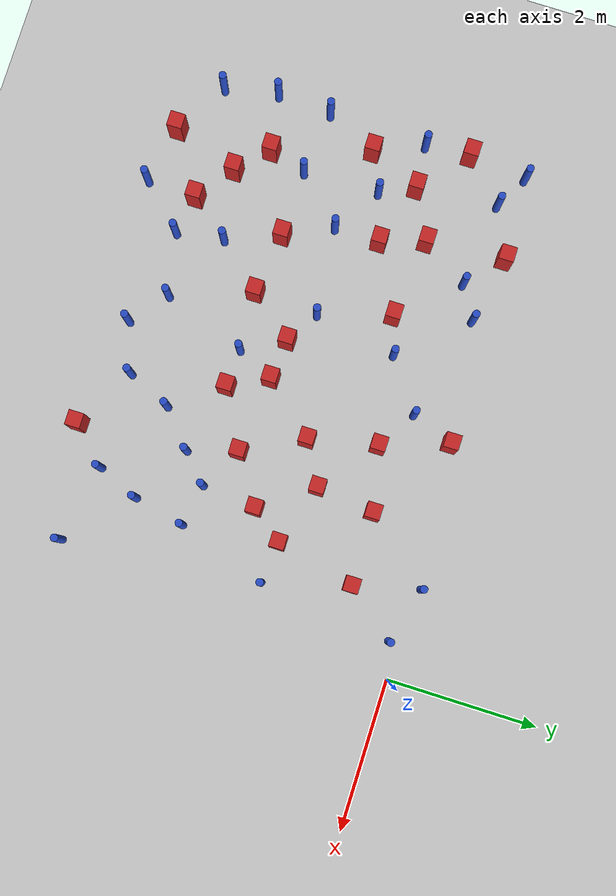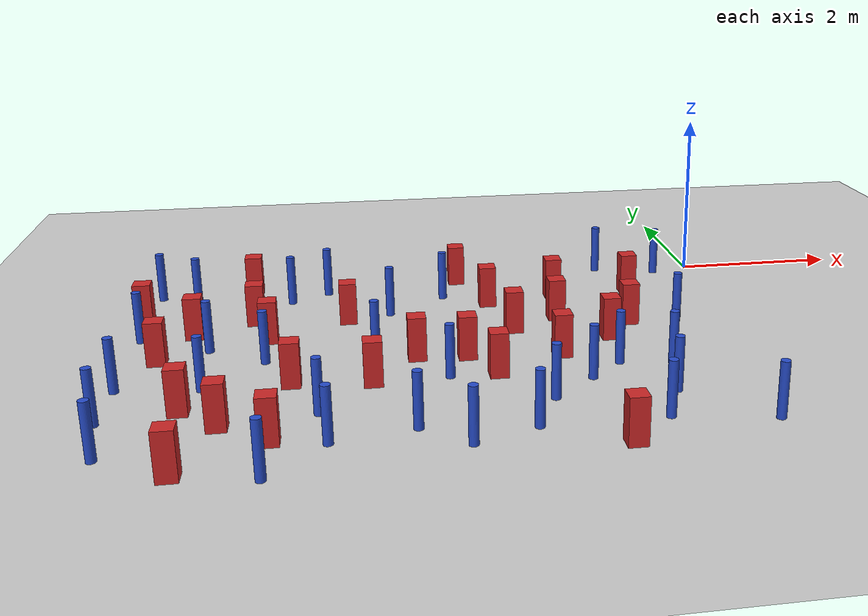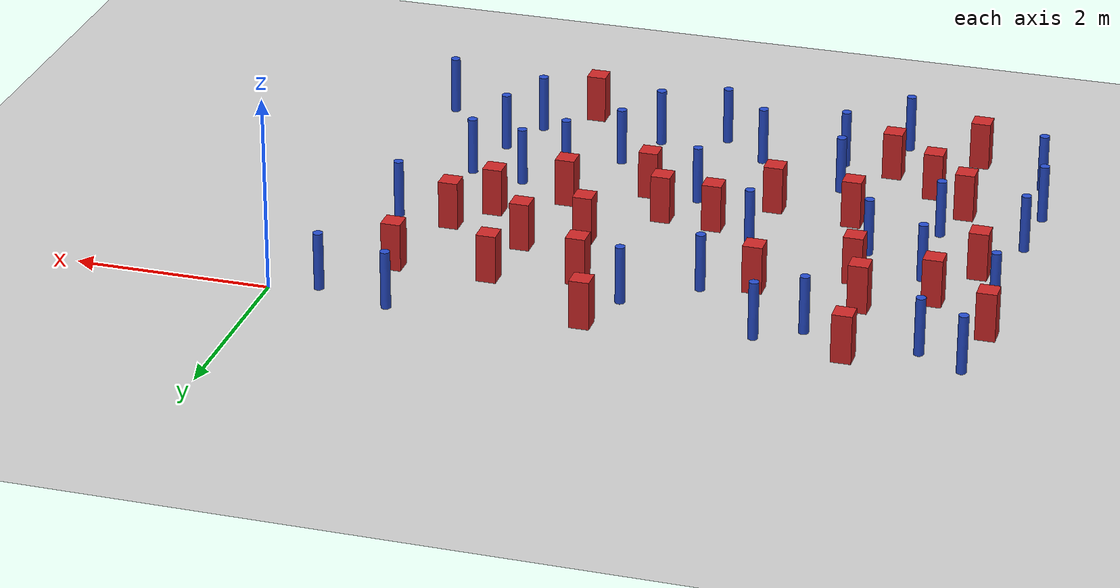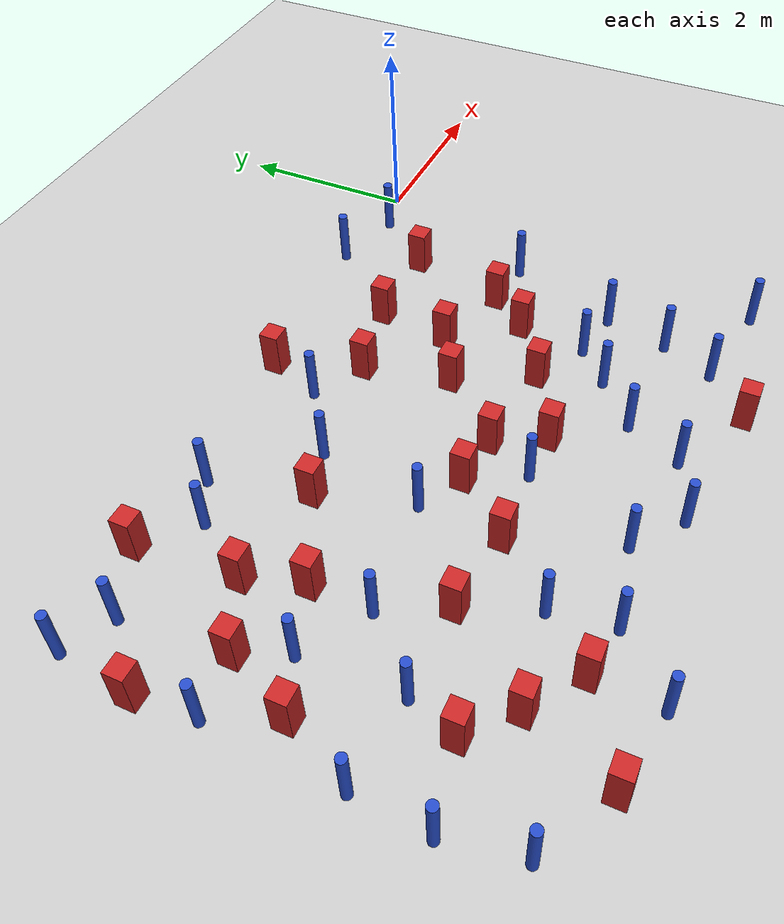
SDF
<sdf version="1.6">
 <world name="default">
  <model name="ground_plane">
   <static>1</static>
   <link name="link">
    <collision name="collision">
     <geometry><plane><normal>0 0 1</normal><size>100 100</size></plane></geometry>
     <surface><friction><ode><mu>100</mu><mu2>50</mu2></ode></friction></surface>
    </collision>
    <visual name="visual">
     <cast_shadows>0</cast_shadows>
     <geometry><plane><normal>0 0 1</normal><size>100 100</size></plane></geometry>
     <material>
      <ambient>1.0 1.0 1.0 1.0</ambient>
      <diffuse>0.8 0.8 0.8 1.0</diffuse>
      <specular>0.01 0.01 0.01 1.000000</specular>
     </material>
    </visual>
   </link>
  </model>
  <model name="pole_obstacle6">
   <static>true</static>
   <pose>-6.03614184294 -3.01374664848 2.88873142074e-08 -9.90536690245e-09 4.6021994898e-07 -1.20965994966e-07</pose>
   <link name="link">
    <pose>0 0 0.3 0 -0 0</pose>
    <inertial>
     <mass>1</mass>
     <inertia><ixx>0.145833</ixx><ixy>0</ixy><ixz>0</ixz><iyy>0.145833</iyy><iyz>0</iyz><izz>0.125</izz></inertia>
    </inertial>
    <collision name="collision">
     <geometry><cylinder><radius>0.05</radius><length>.6</length></cylinder></geometry>
    </collision>
    <visual name="visual">
     <geometry><cylinder><radius>0.05</radius><length>.6</length></cylinder></geometry>
     <material>
      <script><name>Gazebo/Blue</name><uri>file://media/materials/scripts/gazebo.material</uri></script>
     </material>
    </visual>
   </link>
  </model>
  <model name="square_post_obstacle9">
   <static>true</static>
   <pose>-2.09843953088 -1.58954224777 8.22691968438e-08 7.2212513382e-06 -7.54495500217e-07 2.29674213826e-05</pose>
   <link name="link">
    <pose>0 0 0.25 0 -0 0</pose>
    <inertial>
     <mass>100</mass>
     <inertia>
      <ixx>0.166667</ixx>
      <ixy>0</ixy>
      <ixz>0</ixz>
      <iyy>0.166667</iyy>
      <iyz>0</iyz>
      <izz>0.166667</izz>
     </inertia>
    </inertial>
    <collision name="collision"><geometry><box><size>.2 .2 .5</size></box></geometry></collision>
    <visual name="visual">
     <geometry><box><size>.2 .2 .5</size></box></geometry>
     <material>
      <script><name>Gazebo/Red</name><uri>file://media/materials/scripts/gazebo.material</uri></script>
     </material>
    </visual>
   </link>
  </model>
  <model name="square_post_obstacle10">
   <static>true</static>
   <pose>-6.18987460027 -3.51102487603 8.22691968438e-08 7.2212513382e-06 -7.54495500217e-07 2.29674213826e-05</pose>
   <link name="link">
    <pose>0 0 0.25 0 -0 0</pose>
    <inertial>
     <mass>100</mass>
     <inertia>
      <ixx>0.166667</ixx>
      <ixy>0</ixy>
      <ixz>0</ixz>
      <iyy>0.166667</iyy>
      <iyz>0</iyz>
      <izz>0.166667</izz>
     </inertia>
    </inertial>
    <collision name="collision"><geometry><box><size>.2 .2 .5</size></box></geometry></collision>
    <visual name="visual">
     <geometry><box><size>.2 .2 .5</size></box></geometry>
     <material>
      <script><name>Gazebo/Red</name><uri>file://media/materials/scripts/gazebo.material</uri></script>
     </material>
    </visual>
   </link>
  </model>
  <model name="square_post_obstacle26">
   <static>true</static>
   <pose>-1.96969947344 -4.80066524468 8.22691968438e-08 7.2212513382e-06 -7.54495500217e-07 2.29674213826e-05</pose>
   <link name="link">
    <pose>0 0 0.25 0 -0 0</pose>
    <inertial>
     <mass>100</mass>
     <inertia>
      <ixx>0.166667</ixx>
      <ixy>0</ixy>
      <ixz>0</ixz>
      <iyy>0.166667</iyy>
      <iyz>0</iyz>
      <izz>0.166667</izz>
     </inertia>
    </inertial>
    <collision name="collision"><geometry><box><size>.2 .2 .5</size></box></geometry></collision>
    <visual name="visual">
     <geometry><box><size>.2 .2 .5</size></box></geometry>
     <material>
      <script><name>Gazebo/Red</name><uri>file://media/materials/scripts/gazebo.material</uri></script>
     </material>
    </visual>
   </link>
  </model>
  <model name="square_post_obstacle30">
   <static>true</static>
   <pose>-6.58384823632 -2.22979460355 8.22691968438e-08 7.2212513382e-06 -7.54495500217e-07 2.29674213826e-05</pose>
   <link name="link">
    <pose>0 0 0.25 0 -0 0</pose>
    <inertial>
     <mass>100</mass>
     <inertia>
      <ixx>0.166667</ixx>
      <ixy>0</ixy>
      <ixz>0</ixz>
      <iyy>0.166667</iyy>
      <iyz>0</iyz>
      <izz>0.166667</izz>
     </inertia>
    </inertial>
    <collision name="collision"><geometry><box><size>.2 .2 .5</size></box></geometry></collision>
    <visual name="visual">
     <geometry><box><size>.2 .2 .5</size></box></geometry>
     <material>
      <script><name>Gazebo/Red</name><uri>file://media/materials/scripts/gazebo.material</uri></script>
     </material>
    </visual>
   </link>
  </model>
  <model name="square_post_obstacle31">
   <static>true</static>
   <pose>-4.30403940408 -3.13342213198 8.22691968438e-08 7.2212513382e-06 -7.54495500217e-07 2.29674213826e-05</pose>
   <link name="link">
    <pose>0 0 0.25 0 -0 0</pose>
    <inertial>
     <mass>100</mass>
     <inertia>
      <ixx>0.166667</ixx>
      <ixy>0</ixy>
      <ixz>0</ixz>
      <iyy>0.166667</iyy>
      <iyz>0</iyz>
      <izz>0.166667</izz>
     </inertia>
    </inertial>
    <collision name="collision"><geometry><box><size>.2 .2 .5</size></box></geometry></collision>
    <visual name="visual">
     <geometry><box><size>.2 .2 .5</size></box></geometry>
     <material>
      <script><name>Gazebo/Red</name><uri>file://media/materials/scripts/gazebo.material</uri></script>
     </material>
    </visual>
   </link>
  </model>
  <model name="pole_obstacle22">
   <static>true</static>
   <pose>-6.81948418331 -4.3690585778 2.88873142074e-08 -9.90536690842e-09 4.60219948965e-07 -1.20965994976e-07</pose>
   <link name="link">
    <pose>0 0 0.3 0 -0 0</pose>
    <inertial>
     <mass>1</mass>
     <inertia><ixx>0.145833</ixx><ixy>0</ixy><ixz>0</ixz><iyy>0.145833</iyy><iyz>0</iyz><izz>0.125</izz></inertia>
    </inertial>
    <collision name="collision">
     <geometry><cylinder><radius>0.05</radius><length>.6</length></cylinder></geometry>
    </collision>
    <visual name="visual">
     <geometry><cylinder><radius>0.05</radius><length>.6</length></cylinder></geometry>
     <material>
      <script><name>Gazebo/Blue</name><uri>file://media/materials/scripts/gazebo.material</uri></script>
     </material>
    </visual>
   </link>
  </model>
  <model name="square_post_obstacle35">
   <static>true</static>
   <pose>-1.99716401611 -0.812420465126 8.22691968438e-08 7.2212513382e-06 -7.54495500217e-07 2.29674213826e-05</pose>
   <link name="link">
    <pose>0 0 0.25 0 -0 0</pose>
    <inertial>
     <mass>100</mass>
     <inertia>
      <ixx>0.166667</ixx>
      <ixy>0</ixy>
      <ixz>0</ixz>
      <iyy>0.166667</iyy>
      <iyz>0</iyz>
      <izz>0.166667</izz>
     </inertia>
    </inertial>
    <collision name="collision"><geometry><box><size>.2 .2 .5</size></box></geometry></collision>
    <visual name="visual">
     <geometry><box><size>.2 .2 .5</size></box></geometry>
     <material>
      <script><name>Gazebo/Red</name><uri>file://media/materials/scripts/gazebo.material</uri></script>
     </material>
    </visual>
   </link>
  </model>
  <model name="pole_obstacle36">
   <static>true</static>
   <pose>-0.703754515859 -1.91389794776 2.88873142074e-08 -9.90536689855e-09 4.60219948989e-07 -1.20965994962e-07</pose>
   <link name="link">
    <pose>0 0 0.3 0 -0 0</pose>
    <inertial>
     <mass>1</mass>
     <inertia><ixx>0.145833</ixx><ixy>0</ixy><ixz>0</ixz><iyy>0.145833</iyy><iyz>0</iyz><izz>0.125</izz></inertia>
    </inertial>
    <collision name="collision">
     <geometry><cylinder><radius>0.05</radius><length>.6</length></cylinder></geometry>
    </collision>
    <visual name="visual">
     <geometry><cylinder><radius>0.05</radius><length>.6</length></cylinder></geometry>
     <material>
      <script><name>Gazebo/Blue</name><uri>file://media/materials/scripts/gazebo.material</uri></script>
     </material>
    </visual>
   </link>
  </model>
  <model name="square_post_obstacle36">
   <static>true</static>
   <pose>-3.81558791841 -2.54145775189 8.22691968438e-08 7.2212513382e-06 -7.54495500217e-07 2.29674213826e-05</pose>
   <link name="link">
    <pose>0 0 0.25 0 -0 0</pose>
    <inertial>
     <mass>100</mass>
     <inertia>
      <ixx>0.166667</ixx>
      <ixy>0</ixy>
      <ixz>0</ixz>
      <iyy>0.166667</iyy>
      <iyz>0</iyz>
      <izz>0.166667</izz>
     </inertia>
    </inertial>
    <collision name="collision"><geometry><box><size>.2 .2 .5</size></box></geometry></collision>
    <visual name="visual">
     <geometry><box><size>.2 .2 .5</size></box></geometry>
     <material>
      <script><name>Gazebo/Red</name><uri>file://media/materials/scripts/gazebo.material</uri></script>
     </material>
    </visual>
   </link>
  </model>
  <model name="pole_obstacle38">
   <static>true</static>
   <pose>-4.7848977582 -0.311679073867 2.88873142074e-08 -9.90536689981e-09 4.60219948986e-07 -1.20965994962e-07</pose>
   <link name="link">
    <pose>0 0 0.3 0 -0 0</pose>
    <inertial>
     <mass>1</mass>
     <inertia><ixx>0.145833</ixx><ixy>0</ixy><ixz>0</ixz><iyy>0.145833</iyy><iyz>0</iyz><izz>0.125</izz></inertia>
    </inertial>
    <collision name="collision">
     <geometry><cylinder><radius>0.05</radius><length>.6</length></cylinder></geometry>
    </collision>
    <visual name="visual">
     <geometry><cylinder><radius>0.05</radius><length>.6</length></cylinder></geometry>
     <material>
      <script><name>Gazebo/Blue</name><uri>file://media/materials/scripts/gazebo.material</uri></script>
     </material>
    </visual>
   </link>
  </model>
  <model name="pole_obstacle42">
   <static>true</static>
   <pose>-4.25420104217 -2.27615675706 2.88873142074e-08 -9.90536690245e-09 4.6021994898e-07 -1.20965994966e-07</pose>
   <link name="link">
    <pose>0 0 0.3 0 -0 0</pose>
    <inertial>
     <mass>1</mass>
     <inertia><ixx>0.145833</ixx><ixy>0</ixy><ixz>0</ixz><iyy>0.145833</iyy><iyz>0</iyz><izz>0.125</izz></inertia>
    </inertial>
    <collision name="collision">
     <geometry><cylinder><radius>0.05</radius><length>.6</length></cylinder></geometry>
    </collision>
    <visual name="visual">
     <geometry><cylinder><radius>0.05</radius><length>.6</length></cylinder></geometry>
     <material>
      <script><name>Gazebo/Blue</name><uri>file://media/materials/scripts/gazebo.material</uri></script>
     </material>
    </visual>
   </link>
  </model>
  <model name="square_post_obstacle47">
   <static>true</static>
   <pose>-5.13703138087 -3.02919296917 8.22691968438e-08 7.2212513382e-06 -7.54495500217e-07 2.29674213826e-05</pose>
   <link name="link">
    <pose>0 0 0.25 0 -0 0</pose>
    <inertial>
     <mass>100</mass>
     <inertia>
      <ixx>0.166667</ixx>
      <ixy>0</ixy>
      <ixz>0</ixz>
      <iyy>0.166667</iyy>
      <iyz>0</iyz>
      <izz>0.166667</izz>
     </inertia>
    </inertial>
    <collision name="collision"><geometry><box><size>.2 .2 .5</size></box></geometry></collision>
    <visual name="visual">
     <geometry><box><size>.2 .2 .5</size></box></geometry>
     <material>
      <script><name>Gazebo/Red</name><uri>file://media/materials/scripts/gazebo.material</uri></script>
     </material>
    </visual>
   </link>
  </model>
  <model name="square_post_obstacle49">
   <static>true</static>
   <pose>-2.24121809103 -2.69932398067 8.22691968438e-08 7.2212513382e-06 -7.54495500217e-07 2.29674213826e-05</pose>
   <link name="link">
    <pose>0 0 0.25 0 -0 0</pose>
    <inertial>
     <mass>100</mass>
     <inertia>
      <ixx>0.166667</ixx>
      <ixy>0</ixy>
      <ixz>0</ixz>
      <iyy>0.166667</iyy>
      <iyz>0</iyz>
      <izz>0.166667</izz>
     </inertia>
    </inertial>
    <collision name="collision"><geometry><box><size>.2 .2 .5</size></box></geometry></collision>
    <visual name="visual">
     <geometry><box><size>.2 .2 .5</size></box></geometry>
     <material>
      <script><name>Gazebo/Red</name><uri>file://media/materials/scripts/gazebo.material</uri></script>
     </material>
    </visual>
   </link>
  </model>
  <model name="square_post_obstacle52">
   <static>true</static>
   <pose>-6.10123151695 -4.78272322197 8.22691968438e-08 7.22125133819e-06 -7.54495500217e-07 2.29674213826e-05</pose>
   <link name="link">
    <pose>0 0 0.25 0 -0 0</pose>
    <inertial>
     <mass>100</mass>
     <inertia>
      <ixx>0.166667</ixx>
      <ixy>0</ixy>
      <ixz>0</ixz>
      <iyy>0.166667</iyy>
      <iyz>0</iyz>
      <izz>0.166667</izz>
     </inertia>
    </inertial>
    <collision name="collision"><geometry><box><size>.2 .2 .5</size></box></geometry></collision>
    <visual name="visual">
     <geometry><box><size>.2 .2 .5</size></box></geometry>
     <material>
      <script><name>Gazebo/Red</name><uri>file://media/materials/scripts/gazebo.material</uri></script>
     </material>
    </visual>
   </link>
  </model>
  <model name="square_post_obstacle53">
   <static>true</static>
   <pose>-5.61494459358 -1.19961313031 8.22691968438e-08 7.2212513382e-06 -7.54495500217e-07 2.29674213826e-05</pose>
   <link name="link">
    <pose>0 0 0.25 0 -0 0</pose>
    <inertial>
     <mass>100</mass>
     <inertia>
      <ixx>0.166667</ixx>
      <ixy>0</ixy>
      <ixz>0</ixz>
      <iyy>0.166667</iyy>
      <iyz>0</iyz>
      <izz>0.166667</izz>
     </inertia>
    </inertial>
    <collision name="collision"><geometry><box><size>.2 .2 .5</size></box></geometry></collision>
    <visual name="visual">
     <geometry><box><size>.2 .2 .5</size></box></geometry>
     <material>
      <script><name>Gazebo/Red</name><uri>file://media/materials/scripts/gazebo.material</uri></script>
     </material>
    </visual>
   </link>
  </model>
  <model name="square_post_obstacle56">
   <static>true</static>
   <pose>-5.78827119376 -3.89910857255 8.22691968438e-08 7.2212513382e-06 -7.54495500217e-07 2.29674213826e-05</pose>
   <link name="link">
    <pose>0 0 0.25 0 -0 0</pose>
    <inertial>
     <mass>100</mass>
     <inertia>
      <ixx>0.166667</ixx>
      <ixy>0</ixy>
      <ixz>0</ixz>
      <iyy>0.166667</iyy>
      <iyz>0</iyz>
      <izz>0.166667</izz>
     </inertia>
    </inertial>
    <collision name="collision"><geometry><box><size>.2 .2 .5</size></box></geometry></collision>
    <visual name="visual">
     <geometry><box><size>.2 .2 .5</size></box></geometry>
     <material>
      <script><name>Gazebo/Red</name><uri>file://media/materials/scripts/gazebo.material</uri></script>
     </material>
    </visual>
   </link>
  </model>
  <model name="square_post_obstacle58">
   <static>true</static>
   <pose>-5.43204470099 -1.7884518081 8.22691968438e-08 7.2212513382e-06 -7.54495500217e-07 2.29674213826e-05</pose>
   <link name="link">
    <pose>0 0 0.25 0 -0 0</pose>
    <inertial>
     <mass>100</mass>
     <inertia>
      <ixx>0.166667</ixx>
      <ixy>0</ixy>
      <ixz>0</ixz>
      <iyy>0.166667</iyy>
      <iyz>0</iyz>
      <izz>0.166667</izz>
     </inertia>
    </inertial>
    <collision name="collision"><geometry><box><size>.2 .2 .5</size></box></geometry></collision>
    <visual name="visual">
     <geometry><box><size>.2 .2 .5</size></box></geometry>
     <material>
      <script><name>Gazebo/Red</name><uri>file://media/materials/scripts/gazebo.material</uri></script>
     </material>
    </visual>
   </link>
  </model>
  <model name="pole_obstacle58">
   <static>true</static>
   <pose>-6.8231428834 -0.195083075286 2.88873142074e-08 -9.90536689378e-09 4.60219949e-07 -1.20965994955e-07</pose>
   <link name="link">
    <pose>0 0 0.3 0 -0 0</pose>
    <inertial>
     <mass>1</mass>
     <inertia><ixx>0.145833</ixx><ixy>0</ixy><ixz>0</ixz><iyy>0.145833</iyy><iyz>0</iyz><izz>0.125</izz></inertia>
    </inertial>
    <collision name="collision">
     <geometry><cylinder><radius>0.05</radius><length>.6</length></cylinder></geometry>
    </collision>
    <visual name="visual">
     <geometry><cylinder><radius>0.05</radius><length>.6</length></cylinder></geometry>
     <material>
      <script><name>Gazebo/Blue</name><uri>file://media/materials/scripts/gazebo.material</uri></script>
     </material>
    </visual>
   </link>
  </model>
  <model name="pole_obstacle60">
   <static>true</static>
   <pose>-5.22086560096 -0.567741362424 2.88873142074e-08 -9.90536689837e-09 4.60219948989e-07 -1.2096599496e-07</pose>
   <link name="link">
    <pose>0 0 0.3 0 -0 0</pose>
    <inertial>
     <mass>1</mass>
     <inertia><ixx>0.145833</ixx><ixy>0</ixy><ixz>0</ixz><iyy>0.145833</iyy><iyz>0</iyz><izz>0.125</izz></inertia>
    </inertial>
    <collision name="collision">
     <geometry><cylinder><radius>0.05</radius><length>.6</length></cylinder></geometry>
    </collision>
    <visual name="visual">
     <geometry><cylinder><radius>0.05</radius><length>.6</length></cylinder></geometry>
     <material>
      <script><name>Gazebo/Blue</name><uri>file://media/materials/scripts/gazebo.material</uri></script>
     </material>
    </visual>
   </link>
  </model>
  <model name="square_post_obstacle63">
   <static>true</static>
   <pose>-3.00205541975 -3.11161805181 8.22691968438e-08 7.2212513382e-06 -7.54495500217e-07 2.29674213826e-05</pose>
   <link name="link">
    <pose>0 0 0.25 0 -0 0</pose>
    <inertial>
     <mass>100</mass>
     <inertia>
      <ixx>0.166667</ixx>
      <ixy>0</ixy>
      <ixz>0</ixz>
      <iyy>0.166667</iyy>
      <iyz>0</iyz>
      <izz>0.166667</izz>
     </inertia>
    </inertial>
    <collision name="collision"><geometry><box><size>.2 .2 .5</size></box></geometry></collision>
    <visual name="visual">
     <geometry><box><size>.2 .2 .5</size></box></geometry>
     <material>
      <script><name>Gazebo/Red</name><uri>file://media/materials/scripts/gazebo.material</uri></script>
     </material>
    </visual>
   </link>
  </model>
  <model name="pole_obstacle61">
   <static>true</static>
   <pose>-5.3170056102 -4.949053731 2.88873142074e-08 -9.90536690842e-09 4.60219948965e-07 -1.20965994976e-07</pose>
   <link name="link">
    <pose>0 0 0.3 0 -0 0</pose>
    <inertial>
     <mass>1</mass>
     <inertia><ixx>0.145833</ixx><ixy>0</ixy><ixz>0</ixz><iyy>0.145833</iyy><iyz>0</iyz><izz>0.125</izz></inertia>
    </inertial>
    <collision name="collision">
     <geometry><cylinder><radius>0.05</radius><length>.6</length></cylinder></geometry>
    </collision>
    <visual name="visual">
     <geometry><cylinder><radius>0.05</radius><length>.6</length></cylinder></geometry>
     <material>
      <script><name>Gazebo/Blue</name><uri>file://media/materials/scripts/gazebo.material</uri></script>
     </material>
    </visual>
   </link>
  </model>
  <model name="pole_obstacle64">
   <static>true</static>
   <pose>-4.04253034171 -1.16216814454 2.88873142074e-08 -9.9053668946e-09 4.60219948998e-07 -1.20965994956e-07</pose>
   <link name="link">
    <pose>0 0 0.3 0 -0 0</pose>
    <inertial>
     <mass>1</mass>
     <inertia><ixx>0.145833</ixx><ixy>0</ixy><ixz>0</ixz><iyy>0.145833</iyy><iyz>0</iyz><izz>0.125</izz></inertia>
    </inertial>
    <collision name="collision">
     <geometry><cylinder><radius>0.05</radius><length>.6</length></cylinder></geometry>
    </collision>
    <visual name="visual">
     <geometry><cylinder><radius>0.05</radius><length>.6</length></cylinder></geometry>
     <material>
      <script><name>Gazebo/Blue</name><uri>file://media/materials/scripts/gazebo.material</uri></script>
     </material>
    </visual>
   </link>
  </model>
  <model name="square_post_obstacle70">
   <static>true</static>
   <pose>-2.65520622822 -1.90580715479 8.22691968438e-08 7.22125133819e-06 -7.54495500217e-07 2.29674213826e-05</pose>
   <link name="link">
    <pose>0 0 0.25 0 -0 0</pose>
    <inertial>
     <mass>100</mass>
     <inertia>
      <ixx>0.166667</ixx>
      <ixy>0</ixy>
      <ixz>0</ixz>
      <iyy>0.166667</iyy>
      <iyz>0</iyz>
      <izz>0.166667</izz>
     </inertia>
    </inertial>
    <collision name="collision"><geometry><box><size>.2 .2 .5</size></box></geometry></collision>
    <visual name="visual">
     <geometry><box><size>.2 .2 .5</size></box></geometry>
     <material>
      <script><name>Gazebo/Red</name><uri>file://media/materials/scripts/gazebo.material</uri></script>
     </material>
    </visual>
   </link>
  </model>
  <model name="pole_obstacle67">
   <static>true</static>
   <pose>-1.26069332447 -3.78941729132 2.88873142074e-08 -9.90536689791e-09 4.6021994899e-07 -1.20965994959e-07</pose>
   <link name="link">
    <pose>0 0 0.3 0 -0 0</pose>
    <inertial>
     <mass>1</mass>
     <inertia><ixx>0.145833</ixx><ixy>0</ixy><ixz>0</ixz><iyy>0.145833</iyy><iyz>0</iyz><izz>0.125</izz></inertia>
    </inertial>
    <collision name="collision">
     <geometry><cylinder><radius>0.05</radius><length>.6</length></cylinder></geometry>
    </collision>
    <visual name="visual">
     <geometry><cylinder><radius>0.05</radius><length>.6</length></cylinder></geometry>
     <material>
      <script><name>Gazebo/Blue</name><uri>file://media/materials/scripts/gazebo.material</uri></script>
     </material>
    </visual>
   </link>
  </model>
  <model name="pole_obstacle71">
   <static>true</static>
   <pose>-3.44056912148 -4.59918820296 2.88873142074e-08 -9.90536689859e-09 4.60219948989e-07 -1.20965994961e-07</pose>
   <link name="link">
    <pose>0 0 0.3 0 -0 0</pose>
    <inertial>
     <mass>1</mass>
     <inertia><ixx>0.145833</ixx><ixy>0</ixy><ixz>0</ixz><iyy>0.145833</iyy><iyz>0</iyz><izz>0.125</izz></inertia>
    </inertial>
    <collision name="collision">
     <geometry><cylinder><radius>0.05</radius><length>.6</length></cylinder></geometry>
    </collision>
    <visual name="visual">
     <geometry><cylinder><radius>0.05</radius><length>.6</length></cylinder></geometry>
     <material>
      <script><name>Gazebo/Blue</name><uri>file://media/materials/scripts/gazebo.material</uri></script>
     </material>
    </visual>
   </link>
  </model>
  <model name="pole_obstacle77">
   <static>true</static>
   <pose>-1.23392336589 0.0731168592612 2.88873142074e-08 -9.90536689717e-09 4.60219948992e-07 -1.20965994959e-07</pose>
   <link name="link">
    <pose>0 0 0.3 0 -0 0</pose>
    <inertial>
     <mass>1</mass>
     <inertia><ixx>0.145833</ixx><ixy>0</ixy><ixz>0</ixz><iyy>0.145833</iyy><iyz>0</iyz><izz>0.125</izz></inertia>
    </inertial>
    <collision name="collision">
     <geometry><cylinder><radius>0.05</radius><length>.6</length></cylinder></geometry>
    </collision>
    <visual name="visual">
     <geometry><cylinder><radius>0.05</radius><length>.6</length></cylinder></geometry>
     <material>
      <script><name>Gazebo/Blue</name><uri>file://media/materials/scripts/gazebo.material</uri></script>
     </material>
    </visual>
   </link>
  </model>
  <model name="pole_obstacle84">
   <static>true</static>
   <pose>-2.03863901074 -3.35161588642 2.88873142074e-08 -9.90536692171e-09 4.60219948934e-07 -1.20965994985e-07</pose>
   <link name="link">
    <pose>0 0 0.3 0 -0 0</pose>
    <inertial>
     <mass>1</mass>
     <inertia><ixx>0.145833</ixx><ixy>0</ixy><ixz>0</ixz><iyy>0.145833</iyy><iyz>0</iyz><izz>0.125</izz></inertia>
    </inertial>
    <collision name="collision">
     <geometry><cylinder><radius>0.05</radius><length>.6</length></cylinder></geometry>
    </collision>
    <visual name="visual">
     <geometry><cylinder><radius>0.05</radius><length>.6</length></cylinder></geometry>
     <material>
      <script><name>Gazebo/Blue</name><uri>file://media/materials/scripts/gazebo.material</uri></script>
     </material>
    </visual>
   </link>
  </model>
  <model name="pole_obstacle89">
   <static>true</static>
   <pose>-1.49728392917 -4.34476186395 2.88873142074e-08 -9.90536689852e-09 4.60219948989e-07 -1.2096599496e-07</pose>
   <link name="link">
    <pose>0 0 0.3 0 -0 0</pose>
    <inertial>
     <mass>1</mass>
     <inertia><ixx>0.145833</ixx><ixy>0</ixy><ixz>0</ixz><iyy>0.145833</iyy><iyz>0</iyz><izz>0.125</izz></inertia>
    </inertial>
    <collision name="collision">
     <geometry><cylinder><radius>0.05</radius><length>.6</length></cylinder></geometry>
    </collision>
    <visual name="visual">
     <geometry><cylinder><radius>0.05</radius><length>.6</length></cylinder></geometry>
     <material>
      <script><name>Gazebo/Blue</name><uri>file://media/materials/scripts/gazebo.material</uri></script>
     </material>
    </visual>
   </link>
  </model>
  <model name="square_post_obstacle83">
   <static>true</static>
   <pose>-4.54144174964 -1.3199623727 8.22691968438e-08 7.2212513382e-06 -7.54495500217e-07 2.29674213826e-05</pose>
   <link name="link">
    <pose>0 0 0.25 0 -0 0</pose>
    <inertial>
     <mass>100</mass>
     <inertia>
      <ixx>0.166667</ixx>
      <ixy>0</ixy>
      <ixz>0</ixz>
      <iyy>0.166667</iyy>
      <iyz>0</iyz>
      <izz>0.166667</izz>
     </inertia>
    </inertial>
    <collision name="collision"><geometry><box><size>.2 .2 .5</size></box></geometry></collision>
    <visual name="visual">
     <geometry><box><size>.2 .2 .5</size></box></geometry>
     <material>
      <script><name>Gazebo/Red</name><uri>file://media/materials/scripts/gazebo.material</uri></script>
     </material>
    </visual>
   </link>
  </model>
  <model name="pole_obstacle96">
   <static>true</static>
   <pose>-3.91584412427 -4.2058986377 2.88873142074e-08 -9.90536689859e-09 4.60219948989e-07 -1.20965994961e-07</pose>
   <link name="link">
    <pose>0 0 0.3 0 -0 0</pose>
    <inertial>
     <mass>1</mass>
     <inertia><ixx>0.145833</ixx><ixy>0</ixy><ixz>0</ixz><iyy>0.145833</iyy><iyz>0</iyz><izz>0.125</izz></inertia>
    </inertial>
    <collision name="collision">
     <geometry><cylinder><radius>0.05</radius><length>.6</length></cylinder></geometry>
    </collision>
    <visual name="visual">
     <geometry><cylinder><radius>0.05</radius><length>.6</length></cylinder></geometry>
     <material>
      <script><name>Gazebo/Blue</name><uri>file://media/materials/scripts/gazebo.material</uri></script>
     </material>
    </visual>
   </link>
  </model>
  <model name="square_post_obstacle85">
   <static>true</static>
   <pose>-6.27210156979 -1.53431571749 8.22691968438e-08 7.2212513382e-06 -7.54495500217e-07 2.29674213826e-05</pose>
   <link name="link">
    <pose>0 0 0.25 0 -0 0</pose>
    <inertial>
     <mass>100</mass>
     <inertia>
      <ixx>0.166667</ixx>
      <ixy>0</ixy>
      <ixz>0</ixz>
      <iyy>0.166667</iyy>
      <iyz>0</iyz>
      <izz>0.166667</izz>
     </inertia>
    </inertial>
    <collision name="collision"><geometry><box><size>.2 .2 .5</size></box></geometry></collision>
    <visual name="visual">
     <geometry><box><size>.2 .2 .5</size></box></geometry>
     <material>
      <script><name>Gazebo/Red</name><uri>file://media/materials/scripts/gazebo.material</uri></script>
     </material>
    </visual>
   </link>
  </model>
  <model name="square_post_obstacle93">
   <static>true</static>
   <pose>-1.27123248153 -1.85635105431 8.22691968438e-08 7.2212513382e-06 -7.54495500217e-07 2.29674213826e-05</pose>
   <link name="link">
    <pose>0 0 0.25 0 -0 0</pose>
    <inertial>
     <mass>100</mass>
     <inertia>
      <ixx>0.166667</ixx>
      <ixy>0</ixy>
      <ixz>0</ixz>
      <iyy>0.166667</iyy>
      <iyz>0</iyz>
      <izz>0.166667</izz>
     </inertia>
    </inertial>
    <collision name="collision"><geometry><box><size>.2 .2 .5</size></box></geometry></collision>
    <visual name="visual">
     <geometry><box><size>.2 .2 .5</size></box></geometry>
     <material>
      <script><name>Gazebo/Red</name><uri>file://media/materials/scripts/gazebo.material</uri></script>
     </material>
    </visual>
   </link>
  </model>
  <model name="square_post_obstacle104">
   <static>true</static>
   <pose>-3.14527571604 -0.116860269251 8.22691968438e-08 7.2212513382e-06 -7.54495500217e-07 2.29674213826e-05</pose>
   <link name="link">
    <pose>0 0 0.25 0 -0 0</pose>
    <inertial>
     <mass>100</mass>
     <inertia>
      <ixx>0.166667</ixx>
      <ixy>0</ixy>
      <ixz>0</ixz>
      <iyy>0.166667</iyy>
      <iyz>0</iyz>
      <izz>0.166667</izz>
     </inertia>
    </inertial>
    <collision name="collision"><geometry><box><size>.2 .2 .5</size></box></geometry></collision>
    <visual name="visual">
     <geometry><box><size>.2 .2 .5</size></box></geometry>
     <material>
      <script><name>Gazebo/Red</name><uri>file://media/materials/scripts/gazebo.material</uri></script>
     </material>
    </visual>
   </link>
  </model>
  <model name="pole_obstacle135">
   <static>true</static>
   <pose>-6.06512467455 -1.9931777671 2.88873142074e-08 -9.90536689117e-09 4.60219949006e-07 -1.20965994949e-07</pose>
   <link name="link">
    <pose>0 0 0.3 0 -0 0</pose>
    <inertial>
     <mass>1</mass>
     <inertia><ixx>0.145833</ixx><ixy>0</ixy><ixz>0</ixz><iyy>0.145833</iyy><iyz>0</iyz><izz>0.125</izz></inertia>
    </inertial>
    <collision name="collision">
     <geometry><cylinder><radius>0.05</radius><length>.6</length></cylinder></geometry>
    </collision>
    <visual name="visual">
     <geometry><cylinder><radius>0.05</radius><length>.6</length></cylinder></geometry>
     <material>
      <script><name>Gazebo/Blue</name><uri>file://media/materials/scripts/gazebo.material</uri></script>
     </material>
    </visual>
   </link>
  </model>
  <model name="square_post_obstacle123">
   <static>true</static>
   <pose>-6.9079015989 -0.980805059193 8.22691968438e-08 7.2212513382e-06 -7.54495500217e-07 2.29674213826e-05</pose>
   <link name="link">
    <pose>0 0 0.25 0 -0 0</pose>
    <inertial>
     <mass>100</mass>
     <inertia>
      <ixx>0.166667</ixx>
      <ixy>0</ixy>
      <ixz>0</ixz>
      <iyy>0.166667</iyy>
      <iyz>0</iyz>
      <izz>0.166667</izz>
     </inertia>
    </inertial>
    <collision name="collision"><geometry><box><size>.2 .2 .5</size></box></geometry></collision>
    <visual name="visual">
     <geometry><box><size>.2 .2 .5</size></box></geometry>
     <material>
      <script><name>Gazebo/Red</name><uri>file://media/materials/scripts/gazebo.material</uri></script>
     </material>
    </visual>
   </link>
  </model>
  <model name="pole_obstacle140">
   <static>true</static>
   <pose>-2.78351343646 -4.35247186296 2.88873142074e-08 -9.90536689859e-09 4.60219948989e-07 -1.20965994961e-07</pose>
   <link name="link">
    <pose>0 0 0.3 0 -0 0</pose>
    <inertial>
     <mass>1</mass>
     <inertia><ixx>0.145833</ixx><ixy>0</ixy><ixz>0</ixz><iyy>0.145833</iyy><iyz>0</iyz><izz>0.125</izz></inertia>
    </inertial>
    <collision name="collision">
     <geometry><cylinder><radius>0.05</radius><length>.6</length></cylinder></geometry>
    </collision>
    <visual name="visual">
     <geometry><cylinder><radius>0.05</radius><length>.6</length></cylinder></geometry>
     <material>
      <script><name>Gazebo/Blue</name><uri>file://media/materials/scripts/gazebo.material</uri></script>
     </material>
    </visual>
   </link>
  </model>
  <model name="pole_obstacle143">
   <static>true</static>
   <pose>-3.507214655 -3.09268190507 2.88873142074e-08 -9.90536689597e-09 4.60219948995e-07 -1.20965994957e-07</pose>
   <link name="link">
    <pose>0 0 0.3 0 -0 0</pose>
    <inertial>
     <mass>1</mass>
     <inertia><ixx>0.145833</ixx><ixy>0</ixy><ixz>0</ixz><iyy>0.145833</iyy><iyz>0</iyz><izz>0.125</izz></inertia>
    </inertial>
    <collision name="collision">
     <geometry><cylinder><radius>0.05</radius><length>.6</length></cylinder></geometry>
    </collision>
    <visual name="visual">
     <geometry><cylinder><radius>0.05</radius><length>.6</length></cylinder></geometry>
     <material>
      <script><name>Gazebo/Blue</name><uri>file://media/materials/scripts/gazebo.material</uri></script>
     </material>
    </visual>
   </link>
  </model>
  <model name="square_post_obstacle135">
   <static>true</static>
   <pose>-2.84834673764 -1.00102148463 8.22691968438e-08 7.2212513382e-06 -7.54495500217e-07 2.29674213826e-05</pose>
   <link name="link">
    <pose>0 0 0.25 0 -0 0</pose>
    <inertial>
     <mass>100</mass>
     <inertia>
      <ixx>0.166667</ixx>
      <ixy>0</ixy>
      <ixz>0</ixz>
      <iyy>0.166667</iyy>
      <iyz>0</iyz>
      <izz>0.166667</izz>
     </inertia>
    </inertial>
    <collision name="collision"><geometry><box><size>.2 .2 .5</size></box></geometry></collision>
    <visual name="visual">
     <geometry><box><size>.2 .2 .5</size></box></geometry>
     <material>
      <script><name>Gazebo/Red</name><uri>file://media/materials/scripts/gazebo.material</uri></script>
     </material>
    </visual>
   </link>
  </model>
  <model name="pole_obstacle148">
   <static>true</static>
   <pose>-0.460141931765 -4.54205533004 2.88873142074e-08 -9.90536689758e-09 4.60219948991e-07 -1.20965994957e-07</pose>
   <link name="link">
    <pose>0 0 0.3 0 -0 0</pose>
    <inertial>
     <mass>1</mass>
     <inertia><ixx>0.145833</ixx><ixy>0</ixy><ixz>0</ixz><iyy>0.145833</iyy><iyz>0</iyz><izz>0.125</izz></inertia>
    </inertial>
    <collision name="collision">
     <geometry><cylinder><radius>0.05</radius><length>.6</length></cylinder></geometry>
    </collision>
    <visual name="visual">
     <geometry><cylinder><radius>0.05</radius><length>.6</length></cylinder></geometry>
     <material>
      <script><name>Gazebo/Blue</name><uri>file://media/materials/scripts/gazebo.material</uri></script>
     </material>
    </visual>
   </link>
  </model>
  <model name="square_post_obstacle147">
   <static>true</static>
   <pose>-1.60125913782 -2.27886097595 8.22691968438e-08 7.2212513382e-06 -7.54495500217e-07 2.29674213826e-05</pose>
   <link name="link">
    <pose>0 0 0.25 0 -0 0</pose>
    <inertial>
     <mass>100</mass>
     <inertia>
      <ixx>0.166667</ixx>
      <ixy>0</ixy>
      <ixz>0</ixz>
      <iyy>0.166667</iyy>
      <iyz>0</iyz>
      <izz>0.166667</izz>
     </inertia>
    </inertial>
    <collision name="collision"><geometry><box><size>.2 .2 .5</size></box></geometry></collision>
    <visual name="visual">
     <geometry><box><size>.2 .2 .5</size></box></geometry>
     <material>
      <script><name>Gazebo/Red</name><uri>file://media/materials/scripts/gazebo.material</uri></script>
     </material>
    </visual>
   </link>
  </model>
  <model name="pole_obstacle157">
   <static>true</static>
   <pose>-4.75333206683 -4.37839723559 2.88873142074e-08 -9.90536690842e-09 4.60219948965e-07 -1.20965994976e-07</pose>
   <link name="link">
    <pose>0 0 0.3 0 -0 0</pose>
    <inertial>
     <mass>1</mass>
     <inertia><ixx>0.145833</ixx><ixy>0</ixy><ixz>0</ixz><iyy>0.145833</iyy><iyz>0</iyz><izz>0.125</izz></inertia>
    </inertial>
    <collision name="collision">
     <geometry><cylinder><radius>0.05</radius><length>.6</length></cylinder></geometry>
    </collision>
    <visual name="visual">
     <geometry><cylinder><radius>0.05</radius><length>.6</length></cylinder></geometry>
     <material>
      <script><name>Gazebo/Blue</name><uri>file://media/materials/scripts/gazebo.material</uri></script>
     </material>
    </visual>
   </link>
  </model>
  <model name="pole_obstacle171">
   <static>true</static>
   <pose>-3.36810441104 -0.677993489538 2.88873142074e-08 -9.90536689285e-09 4.60219949002e-07 -1.20965994953e-07</pose>
   <link name="link">
    <pose>0 0 0.3 0 -0 0</pose>
    <inertial>
     <mass>1</mass>
     <inertia><ixx>0.145833</ixx><ixy>0</ixy><ixz>0</ixz><iyy>0.145833</iyy><iyz>0</iyz><izz>0.125</izz></inertia>
    </inertial>
    <collision name="collision">
     <geometry><cylinder><radius>0.05</radius><length>.6</length></cylinder></geometry>
    </collision>
    <visual name="visual">
     <geometry><cylinder><radius>0.05</radius><length>.6</length></cylinder></geometry>
     <material>
      <script><name>Gazebo/Blue</name><uri>file://media/materials/scripts/gazebo.material</uri></script>
     </material>
    </visual>
   </link>
  </model>
  <model name="pole_obstacle186">
   <static>true</static>
   <pose>-0.479612592554 -0.12882486183 2.88873142074e-08 -9.90536689887e-09 4.60219948988e-07 -1.20965994961e-07</pose>
   <link name="link">
    <pose>0 0 0.3 0 -0 0</pose>
    <inertial>
     <mass>1</mass>
     <inertia><ixx>0.145833</ixx><ixy>0</ixy><ixz>0</ixz><iyy>0.145833</iyy><iyz>0</iyz><izz>0.125</izz></inertia>
    </inertial>
    <collision name="collision">
     <geometry><cylinder><radius>0.05</radius><length>.6</length></cylinder></geometry>
    </collision>
    <visual name="visual">
     <geometry><cylinder><radius>0.05</radius><length>.6</length></cylinder></geometry>
     <material>
      <script><name>Gazebo/Blue</name><uri>file://media/materials/scripts/gazebo.material</uri></script>
     </material>
    </visual>
   </link>
  </model>
  <model name="square_post_obstacle183">
   <static>true</static>
   <pose>-1.02372067678 -0.797669958689 8.22691968438e-08 7.22125133819e-06 -7.54495500217e-07 2.29674213826e-05</pose>
   <link name="link">
    <pose>0 0 0.25 0 -0 0</pose>
    <inertial>
     <mass>100</mass>
     <inertia>
      <ixx>0.166667</ixx>
      <ixy>0</ixy>
      <ixz>0</ixz>
      <iyy>0.166667</iyy>
      <iyz>0</iyz>
      <izz>0.166667</izz>
     </inertia>
    </inertial>
    <collision name="collision"><geometry><box><size>.2 .2 .5</size></box></geometry></collision>
    <visual name="visual">
     <geometry><box><size>.2 .2 .5</size></box></geometry>
     <material>
      <script><name>Gazebo/Red</name><uri>file://media/materials/scripts/gazebo.material</uri></script>
     </material>
    </visual>
   </link>
  </model>
  <model name="pole_obstacle191">
   <static>true</static>
   <pose>-5.43748025746 -2.39872853328 2.88873142074e-08 -9.90536690245e-09 4.6021994898e-07 -1.20965994966e-07</pose>
   <link name="link">
    <pose>0 0 0.3 0 -0 0</pose>
    <inertial>
     <mass>1</mass>
     <inertia><ixx>0.145833</ixx><ixy>0</ixy><ixz>0</ixz><iyy>0.145833</iyy><iyz>0</iyz><izz>0.125</izz></inertia>
    </inertial>
    <collision name="collision">
     <geometry><cylinder><radius>0.05</radius><length>.6</length></cylinder></geometry>
    </collision>
    <visual name="visual">
     <geometry><cylinder><radius>0.05</radius><length>.6</length></cylinder></geometry>
     <material>
      <script><name>Gazebo/Blue</name><uri>file://media/materials/scripts/gazebo.material</uri></script>
     </material>
    </visual>
   </link>
  </model>
  <model name="pole_obstacle197">
   <static>true</static>
   <pose>-4.84821274833 -3.74488000451 2.88873142074e-08 -9.90536690245e-09 4.6021994898e-07 -1.20965994966e-07</pose>
   <link name="link">
    <pose>0 0 0.3 0 -0 0</pose>
    <inertial>
     <mass>1</mass>
     <inertia><ixx>0.145833</ixx><ixy>0</ixy><ixz>0</ixz><iyy>0.145833</iyy><iyz>0</iyz><izz>0.125</izz></inertia>
    </inertial>
    <collision name="collision">
     <geometry><cylinder><radius>0.05</radius><length>.6</length></cylinder></geometry>
    </collision>
    <visual name="visual">
     <geometry><cylinder><radius>0.05</radius><length>.6</length></cylinder></geometry>
     <material>
      <script><name>Gazebo/Blue</name><uri>file://media/materials/scripts/gazebo.material</uri></script>
     </material>
    </visual>
   </link>
  </model>
  <model name="pole_obstacle202">
   <static>true</static>
   <pose>-1.10597415342 -3.10894193676 2.88873142074e-08 -9.90536689791e-09 4.6021994899e-07 -1.20965994959e-07</pose>
   <link name="link">
    <pose>0 0 0.3 0 -0 0</pose>
    <inertial>
     <mass>1</mass>
     <inertia><ixx>0.145833</ixx><ixy>0</ixy><ixz>0</ixz><iyy>0.145833</iyy><iyz>0</iyz><izz>0.125</izz></inertia>
    </inertial>
    <collision name="collision">
     <geometry><cylinder><radius>0.05</radius><length>.6</length></cylinder></geometry>
    </collision>
    <visual name="visual">
     <geometry><cylinder><radius>0.05</radius><length>.6</length></cylinder></geometry>
     <material>
      <script><name>Gazebo/Blue</name><uri>file://media/materials/scripts/gazebo.material</uri></script>
     </material>
    </visual>
   </link>
  </model>
  <model name="pole_obstacle205">
   <static>true</static>
   <pose>-1.6705681777 -3.00980100553 2.88873142074e-08 -9.90536689791e-09 4.6021994899e-07 -1.20965994959e-07</pose>
   <link name="link">
    <pose>0 0 0.3 0 -0 0</pose>
    <inertial>
     <mass>1</mass>
     <inertia><ixx>0.145833</ixx><ixy>0</ixy><ixz>0</ixz><iyy>0.145833</iyy><iyz>0</iyz><izz>0.125</izz></inertia>
    </inertial>
    <collision name="collision">
     <geometry><cylinder><radius>0.05</radius><length>.6</length></cylinder></geometry>
    </collision>
    <visual name="visual">
     <geometry><cylinder><radius>0.05</radius><length>.6</length></cylinder></geometry>
     <material>
      <script><name>Gazebo/Blue</name><uri>file://media/materials/scripts/gazebo.material</uri></script>
     </material>
    </visual>
   </link>
  </model>
  <model name="pole_obstacle207">
   <static>true</static>
   <pose>-2.51563009995 -3.77145658419 2.88873142074e-08 -9.90536690232e-09 4.6021994898e-07 -1.20965994968e-07</pose>
   <link name="link">
    <pose>0 0 0.3 0 -0 0</pose>
    <inertial>
     <mass>1</mass>
     <inertia><ixx>0.145833</ixx><ixy>0</ixy><ixz>0</ixz><iyy>0.145833</iyy><iyz>0</iyz><izz>0.125</izz></inertia>
    </inertial>
    <collision name="collision">
     <geometry><cylinder><radius>0.05</radius><length>.6</length></cylinder></geometry>
    </collision>
    <visual name="visual">
     <geometry><cylinder><radius>0.05</radius><length>.6</length></cylinder></geometry>
     <material>
      <script><name>Gazebo/Blue</name><uri>file://media/materials/scripts/gazebo.material</uri></script>
     </material>
    </visual>
   </link>
  </model>
  <model name="pole_obstacle214">
   <static>true</static>
   <pose>-6.8627415283 -1.5825807273 2.88873142074e-08 -9.90536689445e-09 4.60219948999e-07 -1.20965994956e-07</pose>
   <link name="link">
    <pose>0 0 0.3 0 -0 0</pose>
    <inertial>
     <mass>1</mass>
     <inertia><ixx>0.145833</ixx><ixy>0</ixy><ixz>0</ixz><iyy>0.145833</iyy><iyz>0</iyz><izz>0.125</izz></inertia>
    </inertial>
    <collision name="collision">
     <geometry><cylinder><radius>0.05</radius><length>.6</length></cylinder></geometry>
    </collision>
    <visual name="visual">
     <geometry><cylinder><radius>0.05</radius><length>.6</length></cylinder></geometry>
     <material>
      <script><name>Gazebo/Blue</name><uri>file://media/materials/scripts/gazebo.material</uri></script>
     </material>
    </visual>
   </link>
  </model>
  <model name="pole_obstacle217">
   <static>true</static>
   <pose>-6.90475111052 -2.91802476893 2.88873142074e-08 -9.90536690245e-09 4.6021994898e-07 -1.20965994966e-07</pose>
   <link name="link">
    <pose>0 0 0.3 0 -0 0</pose>
    <inertial>
     <mass>1</mass>
     <inertia><ixx>0.145833</ixx><ixy>0</ixy><ixz>0</ixz><iyy>0.145833</iyy><iyz>0</iyz><izz>0.125</izz></inertia>
    </inertial>
    <collision name="collision">
     <geometry><cylinder><radius>0.05</radius><length>.6</length></cylinder></geometry>
    </collision>
    <visual name="visual">
     <geometry><cylinder><radius>0.05</radius><length>.6</length></cylinder></geometry>
     <material>
      <script><name>Gazebo/Blue</name><uri>file://media/materials/scripts/gazebo.material</uri></script>
     </material>
    </visual>
   </link>
  </model>
  <model name="pole_obstacle218">
   <static>true</static>
   <pose>-6.95189212256 -3.65294189548 2.88873142074e-08 -9.90536690245e-09 4.6021994898e-07 -1.20965994966e-07</pose>
   <link name="link">
    <pose>0 0 0.3 0 -0 0</pose>
    <inertial>
     <mass>1</mass>
     <inertia><ixx>0.145833</ixx><ixy>0</ixy><ixz>0</ixz><iyy>0.145833</iyy><iyz>0</iyz><izz>0.125</izz></inertia>
    </inertial>
    <collision name="collision">
     <geometry><cylinder><radius>0.05</radius><length>.6</length></cylinder></geometry>
    </collision>
    <visual name="visual">
     <geometry><cylinder><radius>0.05</radius><length>.6</length></cylinder></geometry>
     <material>
      <script><name>Gazebo/Blue</name><uri>file://media/materials/scripts/gazebo.material</uri></script>
     </material>
    </visual>
   </link>
  </model>
  <model name="pole_obstacle220">
   <static>true</static>
   <pose>-6.36559128039 -0.440392302783 2.88873142074e-08 -9.90536689981e-09 4.60219948986e-07 -1.20965994962e-07</pose>
   <link name="link">
    <pose>0 0 0.3 0 -0 0</pose>
    <inertial>
     <mass>1</mass>
     <inertia><ixx>0.145833</ixx><ixy>0</ixy><ixz>0</ixz><iyy>0.145833</iyy><iyz>0</iyz><izz>0.125</izz></inertia>
    </inertial>
    <collision name="collision">
     <geometry><cylinder><radius>0.05</radius><length>.6</length></cylinder></geometry>
    </collision>
    <visual name="visual">
     <geometry><cylinder><radius>0.05</radius><length>.6</length></cylinder></geometry>
     <material>
      <script><name>Gazebo/Blue</name><uri>file://media/materials/scripts/gazebo.material</uri></script>
     </material>
    </visual>
   </link>
  </model>
  <model name="square_post_obstacle203">
   <static>true</static>
   <pose>-3.27200983681 -2.59462135661 8.22691968438e-08 7.2212513382e-06 -7.54495500217e-07 2.29674213826e-05</pose>
   <link name="link">
    <pose>0 0 0.25 0 -0 0</pose>
    <inertial>
     <mass>100</mass>
     <inertia>
      <ixx>0.166667</ixx>
      <ixy>0</ixy>
      <ixz>0</ixz>
      <iyy>0.166667</iyy>
      <iyz>0</iyz>
      <izz>0.166667</izz>
     </inertia>
    </inertial>
    <collision name="collision"><geometry><box><size>.2 .2 .5</size></box></geometry></collision>
    <visual name="visual">
     <geometry><box><size>.2 .2 .5</size></box></geometry>
     <material>
      <script><name>Gazebo/Red</name><uri>file://media/materials/scripts/gazebo.material</uri></script>
     </material>
    </visual>
   </link>
  </model>
  <model name="square_post_obstacle205">
   <static>true</static>
   <pose>-5.2875415096 -4.27030040119 8.22691968438e-08 7.2212513382e-06 -7.54495500217e-07 2.29674213826e-05</pose>
   <link name="link">
    <pose>0 0 0.25 0 -0 0</pose>
    <inertial>
     <mass>100</mass>
     <inertia>
      <ixx>0.166667</ixx>
      <ixy>0</ixy>
      <ixz>0</ixz>
      <iyy>0.166667</iyy>
      <iyz>0</iyz>
      <izz>0.166667</izz>
     </inertia>
    </inertial>
    <collision name="collision"><geometry><box><size>.2 .2 .5</size></box></geometry></collision>
    <visual name="visual">
     <geometry><box><size>.2 .2 .5</size></box></geometry>
     <material>
      <script><name>Gazebo/Red</name><uri>file://media/materials/scripts/gazebo.material</uri></script>
     </material>
    </visual>
   </link>
  </model>
  <model name="square_post_obstacle211">
   <static>true</static>
   <pose>-5.69836733743 -0.144796377022 8.22691968438e-08 7.2212513382e-06 -7.54495500217e-07 2.29674213826e-05</pose>
   <link name="link">
    <pose>0 0 0.25 0 -0 0</pose>
    <inertial>
     <mass>100</mass>
     <inertia>
      <ixx>0.166667</ixx>
      <ixy>0</ixy>
      <ixz>0</ixz>
      <iyy>0.166667</iyy>
      <iyz>0</iyz>
      <izz>0.166667</izz>
     </inertia>
    </inertial>
    <collision name="collision"><geometry><box><size>.2 .2 .5</size></box></geometry></collision>
    <visual name="visual">
     <geometry><box><size>.2 .2 .5</size></box></geometry>
     <material>
      <script><name>Gazebo/Red</name><uri>file://media/materials/scripts/gazebo.material</uri></script>
     </material>
    </visual>
   </link>
  </model>
 </world>
</sdf>
